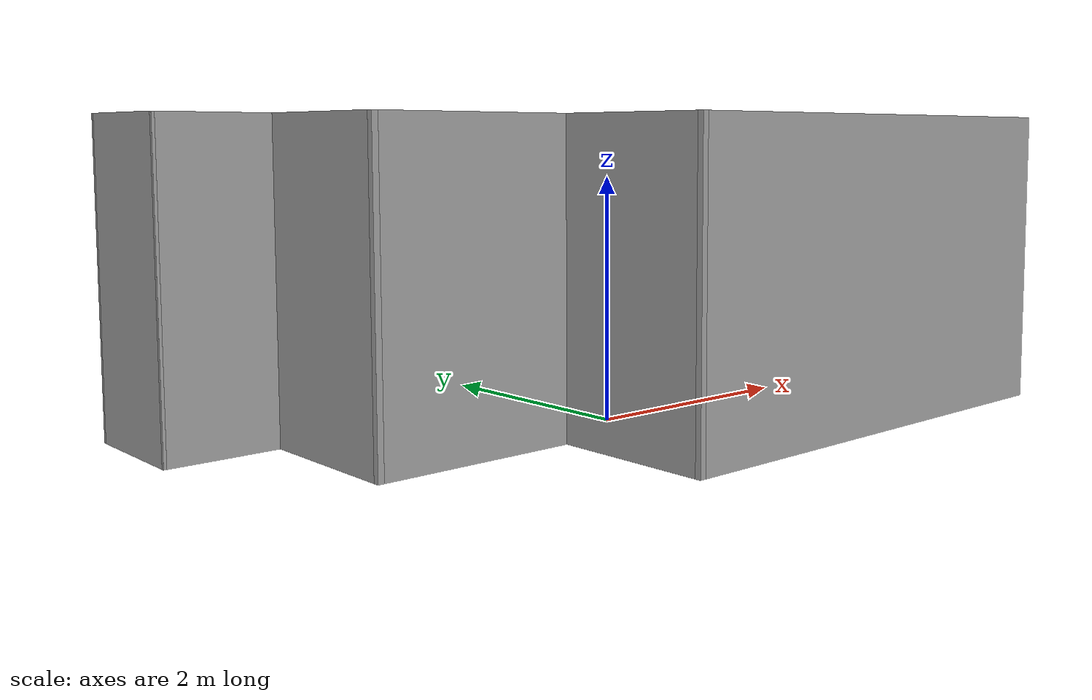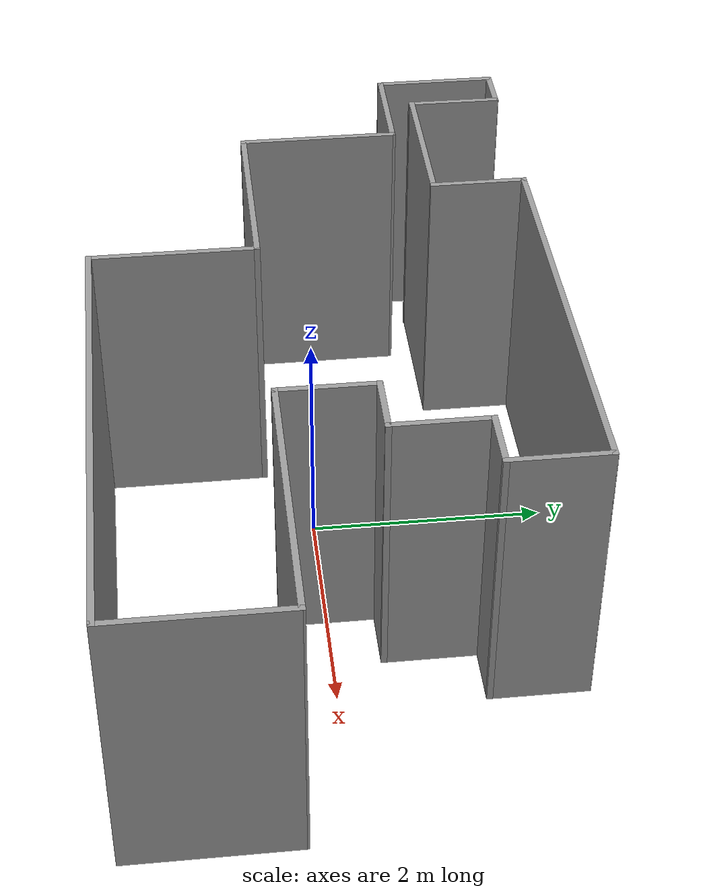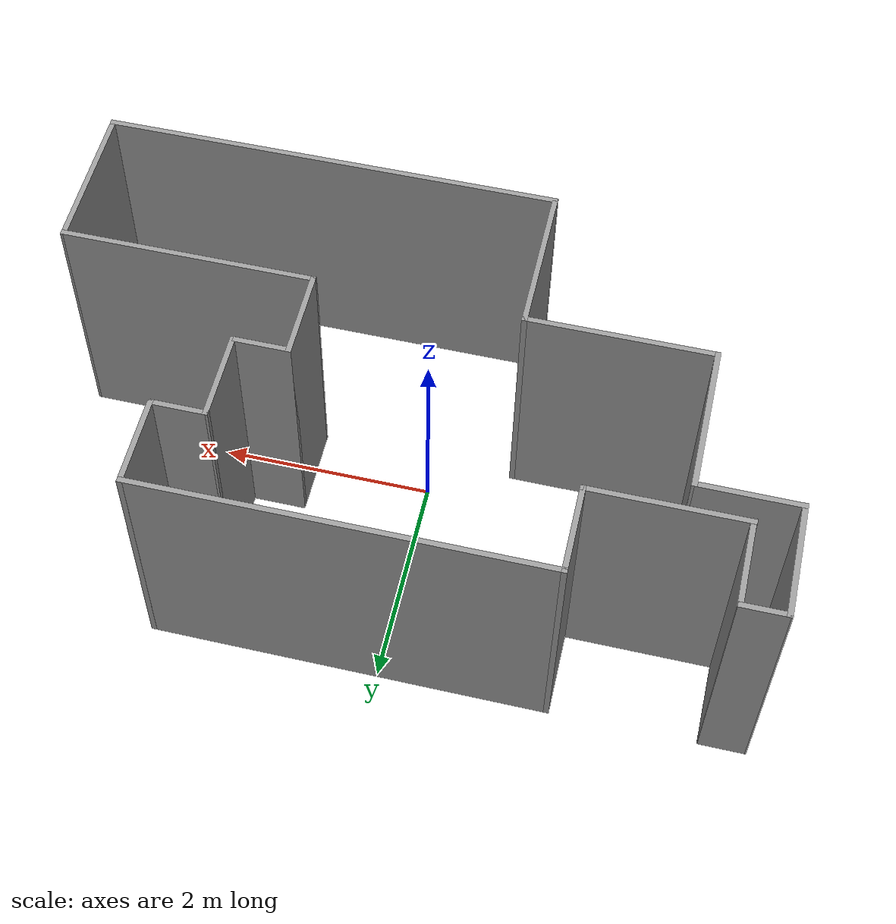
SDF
<?xml version='1.0'?>
<sdf version='1.6'>
  <model name='room_experiments_manual_rearranged_pascal'>
    <pose frame=''>0.048387 0.125826 0 0 -0 0</pose>
    <link name='Wall_0'>
      <collision name='Wall_0_Collision'>
        <geometry>
          <box>
            <size>0.433475 0.05 2.5</size>
          </box>
        </geometry>
        <pose frame=''>0 0 1.25 0 -0 0</pose>
      </collision>
      <visual name='Wall_0_Visual'>
        <pose frame=''>0 0 1.25 0 -0 0</pose>
        <geometry>
          <box>
            <size>0.433475 0.05 2.5</size>
          </box>
        </geometry>
        <material>
          <script>
            <uri>file://media/materials/scripts/gazebo.material</uri>
            <name>Gazebo/Grey</name>
          </script>
          <ambient>1 1 1 1</ambient>
        </material>
      </visual>
      <pose frame=''>-3.19042 1.86759 0 0 -0 0</pose>
    </link>
    <link name='Wall_1'>
      <collision name='Wall_1_Collision'>
        <geometry>
          <box>
            <size>0.828202 0.05 2.5</size>
          </box>
        </geometry>
        <pose frame=''>0 0 1.25 0 -0 0</pose>
      </collision>
      <visual name='Wall_1_Visual'>
        <pose frame=''>0 0 1.25 0 -0 0</pose>
        <geometry>
          <box>
            <size>0.828202 0.05 2.5</size>
          </box>
        </geometry>
        <material>
          <script>
            <uri>file://media/materials/scripts/gazebo.material</uri>
            <name>Gazebo/Grey</name>
          </script>
          <ambient>1 1 1 1</ambient>
        </material>
      </visual>
      <pose frame=''>-2.99587 1.47352 0 0 0 -1.57635</pose>
    </link>
    <link name='Wall_10'>
      <collision name='Wall_10_Collision'>
        <geometry>
          <box>
            <size>2.35142 0.05 2.5</size>
          </box>
        </geometry>
        <pose frame=''>0 0 1.25 0 -0 0</pose>
      </collision>
      <visual name='Wall_10_Visual'>
        <pose frame=''>0 0 1.25 0 -0 0</pose>
        <geometry>
          <box>
            <size>2.35142 0.05 2.5</size>
          </box>
        </geometry>
        <material>
          <script>
            <uri>file://media/materials/scripts/gazebo.material</uri>
            <name>Gazebo/Grey</name>
          </script>
          <ambient>1 1 1 1</ambient>
        </material>
      </visual>
      <pose frame=''>2.23199 -0.501989 0 0 0 -0.000803</pose>
    </link>
    <link name='Wall_11'>
      <collision name='Wall_11_Collision'>
        <geometry>
          <box>
            <size>1.42793 0.05 2.5</size>
          </box>
        </geometry>
        <pose frame=''>0 0 1.25 0 -0 0</pose>
      </collision>
      <visual name='Wall_11_Visual'>
        <pose frame=''>0 0 1.25 0 -0 0</pose>
        <geometry>
          <box>
            <size>1.42793 0.05 2.5</size>
          </box>
        </geometry>
        <material>
          <script>
            <uri>file://media/materials/scripts/gazebo.material</uri>
            <name>Gazebo/Grey</name>
          </script>
          <ambient>1 1 1 1</ambient>
        </material>
      </visual>
      <pose frame=''>3.3827 -1.19188 0 0 0 -1.5708</pose>
    </link>
    <link name='Wall_12'>
      <collision name='Wall_12_Collision'>
        <geometry>
          <box>
            <size>4.24095 0.05 2.5</size>
          </box>
        </geometry>
        <pose frame=''>0 0 1.25 0 -0 0</pose>
      </collision>
      <visual name='Wall_12_Visual'>
        <pose frame=''>0 0 1.25 0 -0 0</pose>
        <geometry>
          <box>
            <size>4.24095 0.05 2.5</size>
          </box>
        </geometry>
        <material>
          <script>
            <uri>file://media/materials/scripts/gazebo.material</uri>
            <name>Gazebo/Grey</name>
          </script>
          <ambient>1 1 1 1</ambient>
        </material>
      </visual>
      <pose frame=''>1.28722 -1.88084 0 0 -0 3.14159</pose>
    </link>
    <link name='Wall_13'>
      <collision name='Wall_13_Collision'>
        <geometry>
          <box>
            <size>1.43365 0.05 2.5</size>
          </box>
        </geometry>
        <pose frame=''>0 0 1.25 0 -0 0</pose>
      </collision>
      <visual name='Wall_13_Visual'>
        <pose frame=''>0 0 1.25 0 -0 0</pose>
        <geometry>
          <box>
            <size>1.43365 0.05 2.5</size>
          </box>
        </geometry>
        <material>
          <script>
            <uri>file://media/materials/scripts/gazebo.material</uri>
            <name>Gazebo/Grey</name>
          </script>
          <ambient>1 1 1 1</ambient>
        </material>
      </visual>
      <pose frame=''>-0.808255 -1.18902 0 0 -0 1.5708</pose>
    </link>
    <link name='Wall_14'>
      <collision name='Wall_14_Collision'>
        <geometry>
          <box>
            <size>1.72525 0.05 2.5</size>
          </box>
        </geometry>
        <pose frame=''>0 0 1.25 0 -0 0</pose>
      </collision>
      <visual name='Wall_14_Visual'>
        <pose frame=''>0 0 1.25 0 -0 0</pose>
        <geometry>
          <box>
            <size>1.72525 0.05 2.5</size>
          </box>
        </geometry>
        <material>
          <script>
            <uri>file://media/materials/scripts/gazebo.material</uri>
            <name>Gazebo/Grey</name>
          </script>
          <ambient>1 1 1 1</ambient>
        </material>
      </visual>
      <pose frame=''>-1.64587 -0.497195 0 0 -0 3.14159</pose>
    </link>
    <link name='Wall_15'>
      <collision name='Wall_15_Collision'>
        <geometry>
          <box>
            <size>1.3904 0.05 2.5</size>
          </box>
        </geometry>
        <pose frame=''>0 0 1.25 0 -0 0</pose>
      </collision>
      <visual name='Wall_15_Visual'>
        <pose frame=''>0 0 1.25 0 -0 0</pose>
        <geometry>
          <box>
            <size>1.3904 0.05 2.5</size>
          </box>
        </geometry>
        <material>
          <script>
            <uri>file://media/materials/scripts/gazebo.material</uri>
            <name>Gazebo/Grey</name>
          </script>
          <ambient>1 1 1 1</ambient>
        </material>
      </visual>
      <pose frame=''>-2.48349 0.173002 0 0 -0 1.5708</pose>
    </link>
    <link name='Wall_16'>
      <collision name='Wall_16_Collision'>
        <geometry>
          <box>
            <size>0.949155 0.05 2.5</size>
          </box>
        </geometry>
        <pose frame=''>0 0 1.25 0 -0 0</pose>
      </collision>
      <visual name='Wall_16_Visual'>
        <pose frame=''>0 0 1.25 0 -0 0</pose>
        <geometry>
          <box>
            <size>0.949155 0.05 2.5</size>
          </box>
        </geometry>
        <material>
          <script>
            <uri>file://media/materials/scripts/gazebo.material</uri>
            <name>Gazebo/Grey</name>
          </script>
          <ambient>1 1 1 1</ambient>
        </material>
      </visual>
      <pose frame=''>-2.93307 0.844626 0 0 -0 3.13842</pose>
    </link>
    <link name='Wall_17'>
      <collision name='Wall_17_Collision'>
        <geometry>
          <box>
            <size>1.07153 0.05 2.5</size>
          </box>
        </geometry>
        <pose frame=''>0 0 1.25 0 -0 0</pose>
      </collision>
      <visual name='Wall_17_Visual'>
        <pose frame=''>0 0 1.25 0 -0 0</pose>
        <geometry>
          <box>
            <size>1.07153 0.05 2.5</size>
          </box>
        </geometry>
        <material>
          <script>
            <uri>file://media/materials/scripts/gazebo.material</uri>
            <name>Gazebo/Grey</name>
          </script>
          <ambient>1 1 1 1</ambient>
        </material>
      </visual>
      <pose frame=''>-3.3824 1.35682 0 0 -0 1.57032</pose>
    </link>
    <link name='Wall_2'>
      <collision name='Wall_2_Collision'>
        <geometry>
          <box>
            <size>1.44339 0.05 2.5</size>
          </box>
        </geometry>
        <pose frame=''>0 0 1.25 0 -0 0</pose>
      </collision>
      <visual name='Wall_2_Visual'>
        <pose frame=''>0 0 1.25 0 -0 0</pose>
        <geometry>
          <box>
            <size>1.44339 0.05 2.5</size>
          </box>
        </geometry>
        <material>
          <script>
            <uri>file://media/materials/scripts/gazebo.material</uri>
            <name>Gazebo/Grey</name>
          </script>
          <ambient>1 1 1 1</ambient>
        </material>
      </visual>
      <pose frame=''>-2.30631 1.08939 0 0 -0 0</pose>
    </link>
    <link name='Wall_3'>
      <collision name='Wall_3_Collision'>
        <geometry>
          <box>
            <size>0.841738 0.05 2.5</size>
          </box>
        </geometry>
        <pose frame=''>0 0 1.25 0 -0 0</pose>
      </collision>
      <visual name='Wall_3_Visual'>
        <pose frame=''>0 0 1.25 0 -0 0</pose>
        <geometry>
          <box>
            <size>0.841738 0.05 2.5</size>
          </box>
        </geometry>
        <material>
          <script>
            <uri>file://media/materials/scripts/gazebo.material</uri>
            <name>Gazebo/Grey</name>
          </script>
          <ambient>1 1 1 1</ambient>
        </material>
      </visual>
      <pose frame=''>-1.60961 1.48497 0 0 -0 1.5708</pose>
    </link>
    <link name='Wall_4'>
      <collision name='Wall_4_Collision'>
        <geometry>
          <box>
            <size>3.72046 0.05 2.5</size>
          </box>
        </geometry>
        <pose frame=''>0 0 1.25 0 -0 0</pose>
      </collision>
      <visual name='Wall_4_Visual'>
        <pose frame=''>0 0 1.25 0 -0 0</pose>
        <geometry>
          <box>
            <size>3.72046 0.05 2.5</size>
          </box>
        </geometry>
        <material>
          <script>
            <uri>file://media/materials/scripts/gazebo.material</uri>
            <name>Gazebo/Grey</name>
          </script>
          <ambient>1 1 1 1</ambient>
        </material>
      </visual>
      <pose frame=''>0.225621 1.88055 0 0 -0 0</pose>
    </link>
    <link name='Wall_5'>
      <collision name='Wall_5_Collision'>
        <geometry>
          <box>
            <size>0.845776 0.05 2.5</size>
          </box>
        </geometry>
        <pose frame=''>0 0 1.25 0 -0 0</pose>
      </collision>
      <visual name='Wall_5_Visual'>
        <pose frame=''>0 0 1.25 0 -0 0</pose>
        <geometry>
          <box>
            <size>0.845776 0.05 2.5</size>
          </box>
        </geometry>
        <material>
          <script>
            <uri>file://media/materials/scripts/gazebo.material</uri>
            <name>Gazebo/Grey</name>
          </script>
          <ambient>1 1 1 1</ambient>
        </material>
      </visual>
      <pose frame=''>2.06085 1.48281 0 0 0 -1.5708</pose>
    </link>
    <link name='Wall_6'>
      <collision name='Wall_6_Collision'>
        <geometry>
          <box>
            <size>0.532411 0.05 2.5</size>
          </box>
        </geometry>
        <pose frame=''>0 0 1.25 0 -0 0</pose>
      </collision>
      <visual name='Wall_6_Visual'>
        <pose frame=''>0 0 1.25 0 -0 0</pose>
        <geometry>
          <box>
            <size>0.532411 0.05 2.5</size>
          </box>
        </geometry>
        <material>
          <script>
            <uri>file://media/materials/scripts/gazebo.material</uri>
            <name>Gazebo/Grey</name>
          </script>
          <ambient>1 1 1 1</ambient>
        </material>
      </visual>
      <pose frame=''>1.81966 1.085 0 0 0 -3.1413</pose>
    </link>
    <link name='Wall_7'>
      <collision name='Wall_7_Collision'>
        <geometry>
          <box>
            <size>0.840511 0.05 2.5</size>
          </box>
        </geometry>
        <pose frame=''>0 0 1.25 0 -0 0</pose>
      </collision>
      <visual name='Wall_7_Visual'>
        <pose frame=''>0 0 1.25 0 -0 0</pose>
        <geometry>
          <box>
            <size>0.840511 0.05 2.5</size>
          </box>
        </geometry>
        <material>
          <script>
            <uri>file://media/materials/scripts/gazebo.material</uri>
            <name>Gazebo/Grey</name>
          </script>
          <ambient>1 1 1 1</ambient>
        </material>
      </visual>
      <pose frame=''>1.57846 0.689673 0 0 0 -1.5708</pose>
    </link>
    <link name='Wall_8'>
      <collision name='Wall_8_Collision'>
        <geometry>
          <box>
            <size>0.547177 0.05 2.5</size>
          </box>
        </geometry>
        <pose frame=''>0 0 1.25 0 -0 0</pose>
      </collision>
      <visual name='Wall_8_Visual'>
        <pose frame=''>0 0 1.25 0 -0 0</pose>
        <geometry>
          <box>
            <size>0.547177 0.05 2.5</size>
          </box>
        </geometry>
        <material>
          <script>
            <uri>file://media/materials/scripts/gazebo.material</uri>
            <name>Gazebo/Grey</name>
          </script>
          <ambient>1 1 1 1</ambient>
        </material>
      </visual>
      <pose frame=''>1.32988 0.294418 0 0 -0 3.14159</pose>
    </link>
    <link name='Wall_9'>
      <collision name='Wall_9_Collision'>
        <geometry>
          <box>
            <size>0.845483 0.05 2.5</size>
          </box>
        </geometry>
        <pose frame=''>0 0 1.25 0 -0 0</pose>
      </collision>
      <visual name='Wall_9_Visual'>
        <pose frame=''>0 0 1.25 0 -0 0</pose>
        <geometry>
          <box>
            <size>0.845483 0.05 2.5</size>
          </box>
        </geometry>
        <material>
          <script>
            <uri>file://media/materials/scripts/gazebo.material</uri>
            <name>Gazebo/Grey</name>
          </script>
          <ambient>1 1 1 1</ambient>
        </material>
      </visual>
      <pose frame=''>1.08129 -0.103324 0 0 0 -1.5708</pose>
    </link>
    <static>1</static>
  </model>
</sdf>
